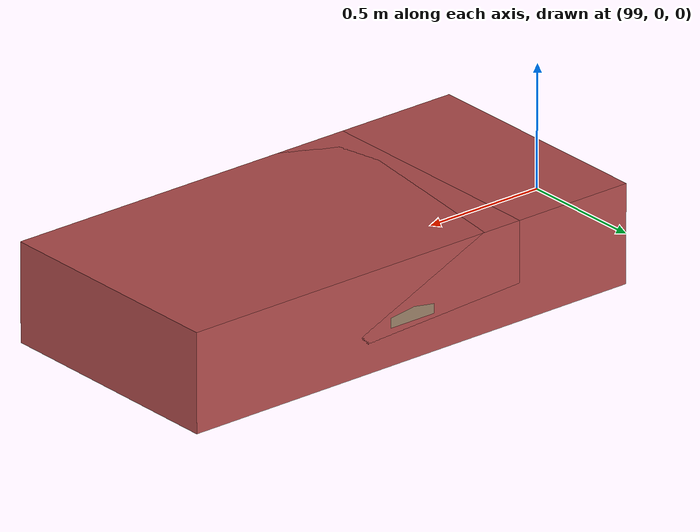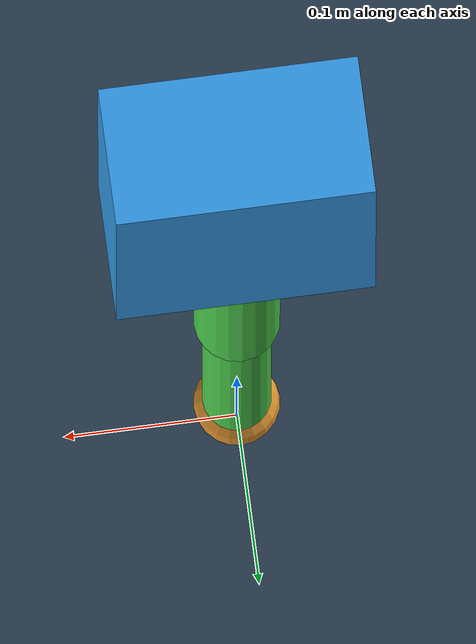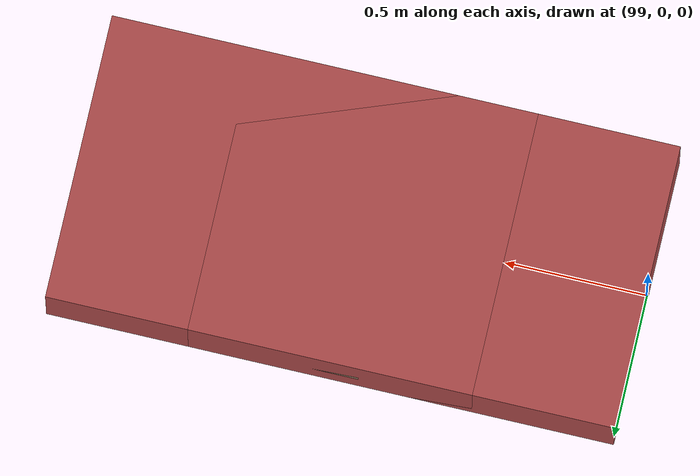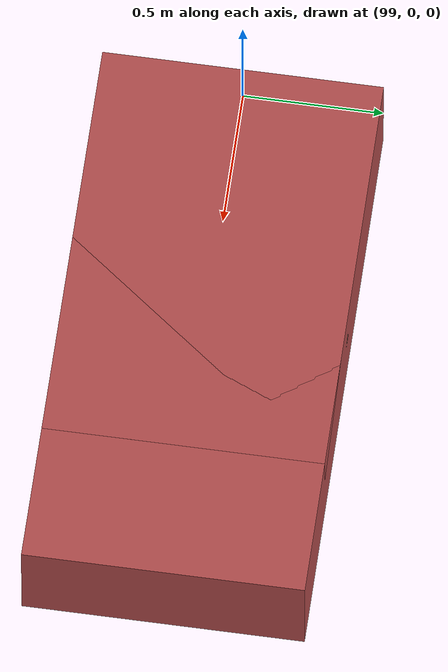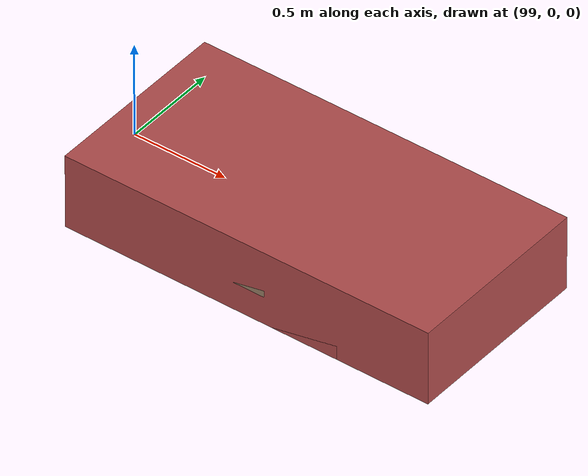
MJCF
<mujoco model="biped2d_ame556">
  <compiler angle="radian"/>

  <option gravity="0 0 -9.81" integrator="RK4" timestep="0.0005">
    <flag override="enable"/>
  </option>

  <default>
    <joint damping="0.1"/>
    <geom contype="1" conaffinity="1" condim="3" friction="0.5 0.5 0.1"
          solref="0.00001 1" solimp="0.95 0.99 0.0001"/>
  </default>

  <visual>
    <global offwidth="1920" offheight="1080"/>
  </visual>

  <asset>
    <texture type="skybox" builtin="gradient" rgb1="0.4 0.6 0.8" rgb2="0.1 0.1 0.2" width="512" height="3072"/>
    <texture type="2d" name="ground_tex" builtin="checker" rgb1="0.2 0.3 0.4" rgb2="0.1 0.15 0.2" width="300" height="300"/>
    <material name="ground_mat" texture="ground_tex" texuniform="true" texrepeat="5 5"/>
    <material name="stair_mat" rgba="0.6 0.5 0.4 1"/>
    <material name="obstacle_mat" rgba="0.7 0.3 0.3 1"/>
  </asset>

  <worldbody>
    <light pos="0 0 3" dir="0 0 -1" directional="true"/>
    <camera name="side" pos="0 -3 0.8" xyaxes="1 0 0 0 0 1" mode="trackcom"/>

    <geom name="floor" type="plane" size="50 50 0.1" material="ground_mat"/>

    <geom name="stair1" type="box" size="0.1 0.5 0.05" pos="100 0 0" material="stair_mat"/>
    <geom name="stair2" type="box" size="0.1 0.5 0.05" pos="100 0 0" material="stair_mat"/>
    <geom name="stair3" type="box" size="0.1 0.5 0.05" pos="100 0 0" material="stair_mat"/>
    <geom name="stair4" type="box" size="0.1 0.5 0.05" pos="100 0 0" material="stair_mat"/>
    <geom name="stair5" type="box" size="0.1 0.5 0.05" pos="100 0 0" material="stair_mat"/>

    <geom name="obs1" type="box" size="0.5 0.5 0.2" pos="100 0 0" material="obstacle_mat"/>
    <geom name="obs2" type="box" size="0.5 0.5 0.2" pos="100 0 0" material="obstacle_mat"/>
    <geom name="obs3" type="box" size="1.0 0.5 0.2" pos="100 0 0" material="obstacle_mat"/>

    <body name="trunk" pos="0 0 0.6">
      <freejoint name="root"/>
      <geom name="trunk_geom" type="box" size="0.075 0.04 0.125" mass="8.0"
            rgba="0.2 0.6 0.9 1" contype="0" conaffinity="0"/>

      <body name="left_thigh" pos="0 0 -0.125">
        <joint name="q1" type="hinge" axis="0 1 0" range="-2.094 0.524" damping="0.1"/>
        <geom type="capsule" fromto="0 0 0 0 0 -0.22" size="0.025" mass="0.25"
              rgba="0.3 0.8 0.3 1" contype="0" conaffinity="0"/>
        <inertial pos="0 0 -0.11" mass="0.25" diaginertia="0.001008 0.001008 0.0001"/>

        <body name="left_shank" pos="0 0 -0.22">
          <joint name="q2" type="hinge" axis="0 1 0" range="0 2.793" damping="0.1"/>
          <geom type="capsule" fromto="0 0 0 0 0 -0.22" size="0.02" mass="0.25"
                rgba="0.3 0.8 0.3 1" contype="0" conaffinity="0"/>
          <inertial pos="0 0 -0.11" mass="0.25" diaginertia="0.001008 0.001008 0.0001"/>
          <geom name="left_foot" type="sphere" pos="0 0 -0.22" size="0.025"
                rgba="0.9 0.6 0.2 1" mass="0.01"/>
        </body>
      </body>

      <body name="right_thigh" pos="0 0 -0.125">
        <joint name="q3" type="hinge" axis="0 1 0" range="-2.094 0.524" damping="0.1"/>
        <geom type="capsule" fromto="0 0 0 0 0 -0.22" size="0.025" mass="0.25"
              rgba="0.8 0.3 0.3 1" contype="0" conaffinity="0"/>
        <inertial pos="0 0 -0.11" mass="0.25" diaginertia="0.001008 0.001008 0.0001"/>

        <body name="right_shank" pos="0 0 -0.22">
          <joint name="q4" type="hinge" axis="0 1 0" range="0 2.793" damping="0.1"/>
          <geom type="capsule" fromto="0 0 0 0 0 -0.22" size="0.02" mass="0.25"
                rgba="0.8 0.3 0.3 1" contype="0" conaffinity="0"/>
          <inertial pos="0 0 -0.11" mass="0.25" diaginertia="0.001008 0.001008 0.0001"/>
          <geom name="right_foot" type="sphere" pos="0 0 -0.22" size="0.025"
                rgba="0.9 0.6 0.2 1" mass="0.01"/>
        </body>
      </body>
    </body>
  </worldbody>

  <actuator>
    <motor name="hip_l" joint="q1" gear="1" ctrllimited="true" ctrlrange="-30 30"/>
    <motor name="knee_l" joint="q2" gear="1" ctrllimited="true" ctrlrange="-60 60"/>
    <motor name="hip_r" joint="q3" gear="1" ctrllimited="true" ctrlrange="-30 30"/>
    <motor name="knee_r" joint="q4" gear="1" ctrllimited="true" ctrlrange="-60 60"/>
  </actuator>
</mujoco>
